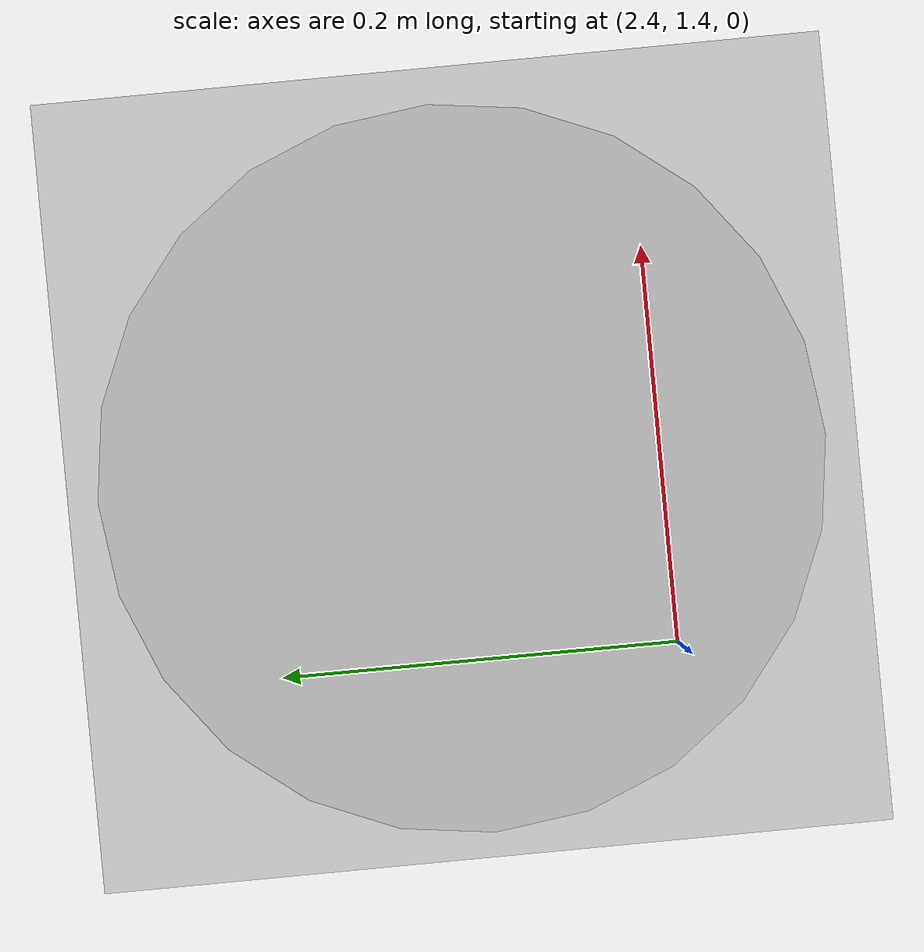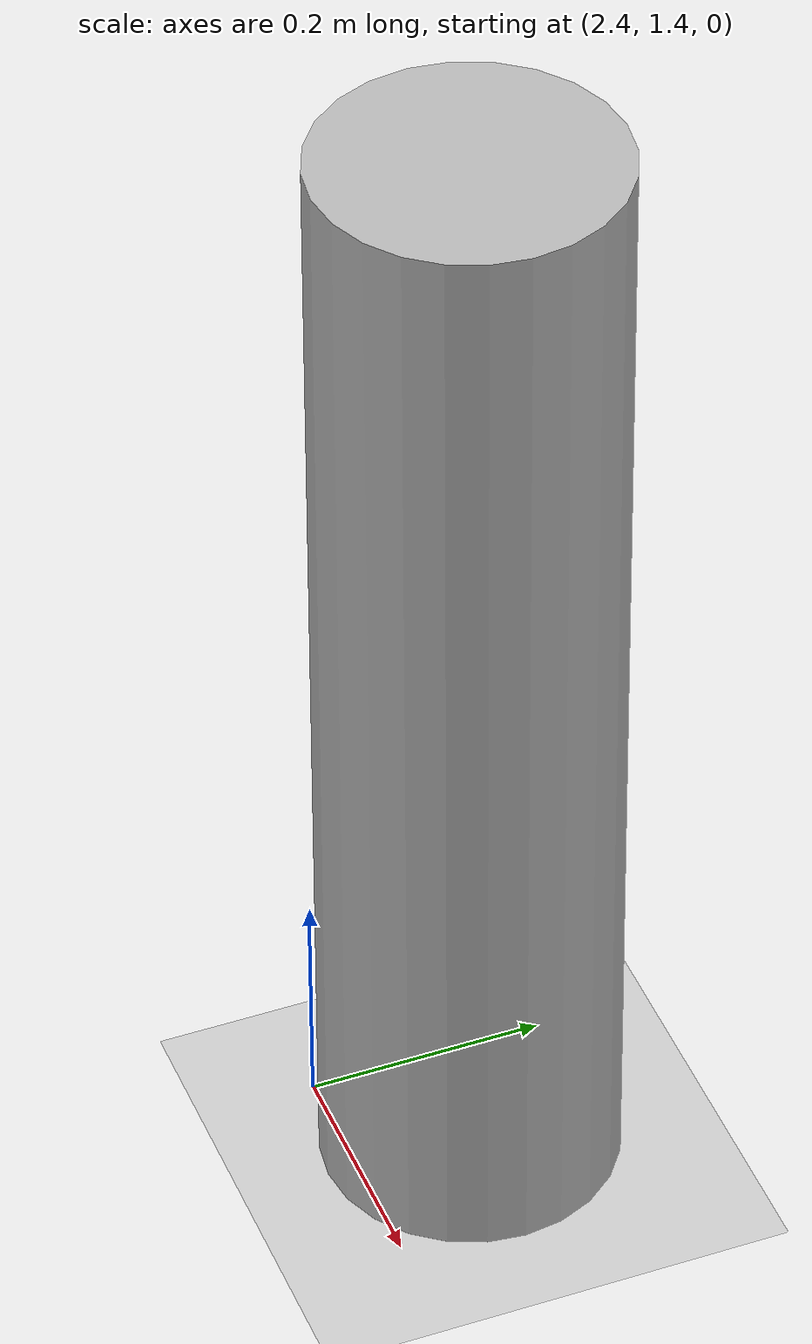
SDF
<?xml version="1.0"?>
<sdf version="1.6">
  <world name="default">

    <include>
      <uri>model://ground_plane</uri>
    </include>

    <include>
      <uri>model://sun</uri>
    </include>

    <scene>
      <shadows>false</shadows>
    </scene>

    <gui fullscreen='0'>
      <camera name='user_camera'>
        <pose frame=''>0.319654 -0.235002 9.29441 0 1.5138 0.009599</pose>
        <view_controller>orbit</view_controller>
        <projection_type>perspective</projection_type>
      </camera>
    </gui>

    <physics type="ode">
      <real_time_update_rate>1000.0</real_time_update_rate>
      <max_step_size>0.001</max_step_size>
      <real_time_factor>1</real_time_factor>
      <ode>
        <solver>
          <type>quick</type>
          <iters>150</iters>
          <precon_iters>0</precon_iters>
          <sor>1.400000</sor>
          <use_dynamic_moi_rescaling>1</use_dynamic_moi_rescaling>
        </solver>
        <constraints>
          <cfm>0.00001</cfm>
          <erp>0.2</erp>
          <contact_max_correcting_vel>2000.000000</contact_max_correcting_vel>
          <contact_surface_layer>0.01000</contact_surface_layer>
        </constraints>
      </ode>
    </physics>

    <spherical_coordinates>
      <latitude_deg>52.409538</latitude_deg>
      <longitude_deg>16.931992</longitude_deg>
      <elevation>0</elevation>
    </spherical_coordinates>

    <!-- Landmark model -->
    <model name="cylinder_model">
      <pose>2.5 1.5 0.5 0 0 0</pose> <!-- 0.5 to have half of its height above the ground -->
      <link name="link">
        <collision name="collision">
          <geometry>
            <cylinder>
              <radius>0.125</radius>
              <length>1.0</length>
            </cylinder>
          </geometry>
        </collision>
        <visual name="visual">
          <geometry>
            <cylinder>
              <radius>0.125</radius>
              <length>1.0</length>
            </cylinder>
          </geometry>
        </visual>
      </link>
    </model>

  </world>
</sdf>
